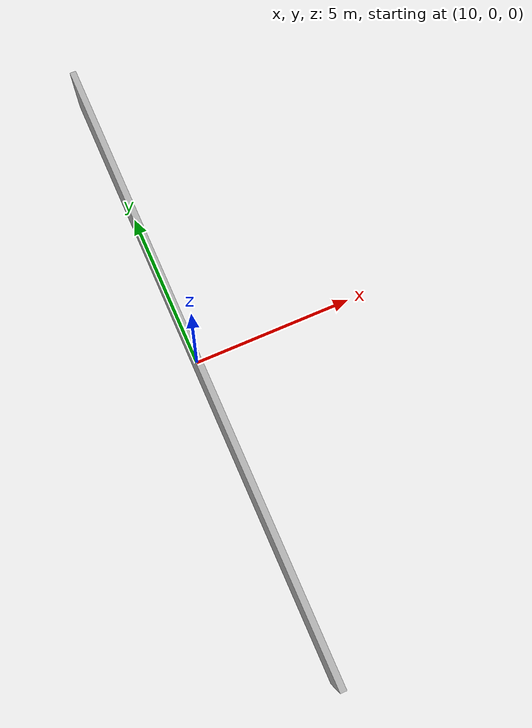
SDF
<?xml version="1.0"?>
<sdf version="1.10">
  <world name="probe_world">
    <physics name="fast" type="ignored"><real_time_factor>1.0</real_time_factor></physics>
    <plugin name="gz::sim::systems::Physics" filename="libgz-sim-physics-system.so"/>
    <plugin name="gz::sim::systems::UserCommands" filename="libgz-sim-user-commands-system.so"/>
    <plugin name="gz::sim::systems::SceneBroadcaster" filename="libgz-sim-scene-broadcaster-system.so"/>
    <plugin name="gz::sim::systems::Sensors" filename="libgz-sim-sensors-system.so">
      <render_engine>ogre2</render_engine>
    </plugin>
    <model name="wall"><static>true</static><pose>10 0 0 0 0 0</pose>
      <link name="l"><collision name="c"><geometry><box><size>0.2 20 2</size></box></geometry></collision>
      <visual name="v"><geometry><box><size>0.2 20 2</size></box></geometry></visual></link>
    </model>
    <model name="probe">
      <static>true</static>
      <pose>4 -2 0 0 0 0.7</pose>
      <link name="sensor_pose_link">
        <sensor name="lidar_sensorpose" type="gpu_lidar">
          <pose>1.5 2.5 0.5 0 0 1.0</pose>
          <topic>/probe/scan_sensorpose</topic>
          <update_rate>5</update_rate>
          <lidar><scan><horizontal><samples>5</samples><min_angle>-0.5</min_angle><max_angle>0.5</max_angle></horizontal></scan>
          <range><min>0.1</min><max>20.0</max></range></lidar>
        </sensor>
      </link>
      <link name="link_pose_link">
        <pose>1.5 2.5 0.5 0 0 1.0</pose>
        <sensor name="lidar_linkpose" type="gpu_lidar">
          <pose>0 0 0 0 0 0</pose>
          <topic>/probe/scan_linkpose</topic>
          <update_rate>5</update_rate>
          <lidar><scan><horizontal><samples>5</samples><min_angle>-0.5</min_angle><max_angle>0.5</max_angle></horizontal></scan>
          <range><min>0.1</min><max>20.0</max></range></lidar>
        </sensor>
      </link>
    </model>
  </world>
</sdf>
